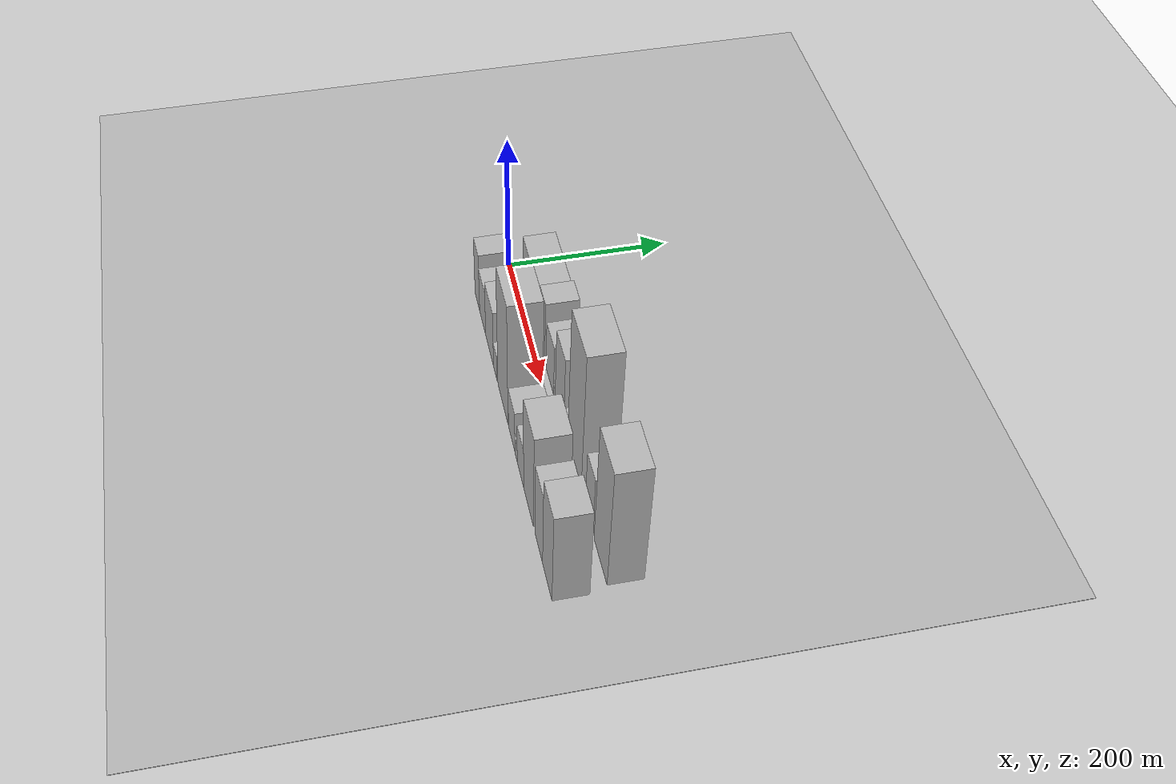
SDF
<?xml version="1.0" encoding="utf-8"?>

<sdf version="1.6">

   <world name="default">

      <gui fullscreen="0">

         <camera name="user_camera">

            <pose>-15 0 4.57585 0 0 0</pose>

            <view_controller>orbit</view_controller>

         </camera>

      </gui>

      <scene>

         <sky>

           <clouds>

             <speed>12</speed>

           </clouds>

         </sky>

         <ambient>0.4 0.4 0.4 1</ambient>

         <background>0.7 0.7 0.7 1</background>

         <shadows>1</shadows>

      </scene>

      <gravity>0 0 -9.8066</gravity>

      <magnetic_field>6e-06 2.3e-05 -4.2e-05</magnetic_field>

      <physics default="0" name="default_physics" type="ode">

         <ode>

            <solver>

               <type>quick</type>

               <iters>10</iters>

               <sor>1.0</sor>

               <use_dynamic_moi_rescaling>0</use_dynamic_moi_rescaling>

            </solver>

            <constraints>

               <cfm>0</cfm>

               <erp>0.2</erp>

               <contact_max_correcting_vel>100</contact_max_correcting_vel>

               <contact_surface_layer>0.001</contact_surface_layer>

            </constraints>

         </ode>

         <max_step_size>0.004</max_step_size>

         <real_time_factor>1</real_time_factor>

         <real_time_update_rate>250</real_time_update_rate>

      </physics>

      <light name="sun" type="directional">

         <cast_shadows>1</cast_shadows>

         <pose>0 0 10 0 0 0</pose>

         <diffuse>0.8 0.8 0.8 1</diffuse>

         <specular>0.2 0.2 0.2 1</specular>

         <attenuation>

            <range>1000</range>

            <constant>0.9</constant>

            <linear>0.01</linear>

            <quadratic>0.001</quadratic>

         </attenuation>

         <direction>-0.5 0.1 -0.9</direction>

      </light>

      <include>

         <name>ground_plane_1</name>

         <uri>model://HANNAS_ground_plane</uri>

         <pose>0 0 0  0 0 0</pose>

      </include>

      <include>

         <name>ground_plane_2</name>

         <uri>model://HANNAS_ground_plane</uri>

         <pose>100 0 0  0 0 0</pose>

      </include>

      <model name="building_1">

         <static>1</static>

         <pose frame="">64.8346 30.0000 0 0.000000 0.000000 1.570796</pose>

         <link name="link">

            <pose frame="">0 0 42.00 0 0 0</pose>

            <collision name="collision">

               <geometry>

                  <box>

                     <size>40.0000 49.6691 84.0000</size>

                  </box>

               </geometry>

               <max_contacts>10</max_contacts>

               <surface>

                  <contact>

                     <ode/>

                  </contact>

                  <bounce/>

                  <friction>

                     <torsional>

                        <ode/>

                     </torsional>

                     <ode/>

                  </friction>

               </surface>

            </collision>

            <visual name="visual">

               <cast_shadows>0</cast_shadows>

               <geometry>

                  <box>

                     <size>40.0000 49.6691 84.0000</size>

                  </box>

               </geometry>

               <material>

                  <script>

                     <uri>model://HANNAS_wall/materials/scripts</uri>

                     <uri>model://HANNAS_wall/materials/textures</uri>

                     <name>vrc/HANNAS_wall</name>

                  </script>

               </material>

            </visual>

            <self_collide>0</self_collide>

            <enable_wind>0</enable_wind>

            <kinematic>0</kinematic>

         </link>

      </model>

      <model name="building_2">

         <static>1</static>

         <pose frame="">112.4177 30.0000 0 0.000000 0.000000 1.570796</pose>

         <link name="link">

            <pose frame="">0 0 42.00 0 0 0</pose>

            <collision name="collision">

               <geometry>

                  <box>

                     <size>40.0000 45.4972 84.0000</size>

                  </box>

               </geometry>

               <max_contacts>10</max_contacts>

               <surface>

                  <contact>

                     <ode/>

                  </contact>

                  <bounce/>

                  <friction>

                     <torsional>

                        <ode/>

                     </torsional>

                     <ode/>

                  </friction>

               </surface>

            </collision>

            <visual name="visual">

               <cast_shadows>0</cast_shadows>

               <geometry>

                  <box>

                     <size>40.0000 45.4972 84.0000</size>

                  </box>

               </geometry>

               <material>

                  <script>

                     <uri>model://HANNAS_wall/materials/scripts</uri>

                     <uri>model://HANNAS_wall/materials/textures</uri>

                     <name>vrc/HANNAS_wall</name>

                  </script>

               </material>

            </visual>

            <self_collide>0</self_collide>

            <enable_wind>0</enable_wind>

            <kinematic>0</kinematic>

         </link>

      </model>

      <model name="building_3">

         <static>1</static>

         <pose frame="">155.1606 30.0000 0 0.000000 0.000000 1.570796</pose>

         <link name="link">

            <pose frame="">0 0 49.50 0 0 0</pose>

            <collision name="collision">

               <geometry>

                  <box>

                     <size>40.0000 31.9887 99.0000</size>

                  </box>

               </geometry>

               <max_contacts>10</max_contacts>

               <surface>

                  <contact>

                     <ode/>

                  </contact>

                  <bounce/>

                  <friction>

                     <torsional>

                        <ode/>

                     </torsional>

                     <ode/>

                  </friction>

               </surface>

            </collision>

            <visual name="visual">

               <cast_shadows>0</cast_shadows>

               <geometry>

                  <box>

                     <size>40.0000 31.9887 99.0000</size>

                  </box>

               </geometry>

               <material>

                  <script>

                     <uri>model://HANNAS_wall/materials/scripts</uri>

                     <uri>model://HANNAS_wall/materials/textures</uri>

                     <name>vrc/HANNAS_wall</name>

                  </script>

               </material>

            </visual>

            <self_collide>0</self_collide>

            <enable_wind>0</enable_wind>

            <kinematic>0</kinematic>

         </link>

      </model>

      <model name="building_4">

         <static>1</static>

         <pose frame="">199.7662 30.0000 0 0.000000 0.000000 1.570796</pose>

         <link name="link">

            <pose frame="">0 0 39.00 0 0 0</pose>

            <collision name="collision">

               <geometry>

                  <box>

                     <size>40.0000 41.2224 78.0000</size>

                  </box>

               </geometry>

               <max_contacts>10</max_contacts>

               <surface>

                  <contact>

                     <ode/>

                  </contact>

                  <bounce/>

                  <friction>

                     <torsional>

                        <ode/>

                     </torsional>

                     <ode/>

                  </friction>

               </surface>

            </collision>

            <visual name="visual">

               <cast_shadows>0</cast_shadows>

               <geometry>

                  <box>

                     <size>40.0000 41.2224 78.0000</size>

                  </box>

               </geometry>

               <material>

                  <script>

                     <uri>model://HANNAS_wall/materials/scripts</uri>

                     <uri>model://HANNAS_wall/materials/textures</uri>

                     <name>vrc/HANNAS_wall</name>

                  </script>

               </material>

            </visual>

            <self_collide>0</self_collide>

            <enable_wind>0</enable_wind>

            <kinematic>0</kinematic>

         </link>

      </model>

      <model name="building_5">

         <static>1</static>

         <pose frame="">224.8412 30.0000 0 0.000000 0.000000 1.570796</pose>

         <link name="link">

            <pose frame="">0 0 9.00 0 0 0</pose>

            <collision name="collision">

               <geometry>

                  <box>

                     <size>40.0000 8.9275 18.0000</size>

                  </box>

               </geometry>

               <max_contacts>10</max_contacts>

               <surface>

                  <contact>

                     <ode/>

                  </contact>

                  <bounce/>

                  <friction>

                     <torsional>

                        <ode/>

                     </torsional>

                     <ode/>

                  </friction>

               </surface>

            </collision>

            <visual name="visual">

               <cast_shadows>0</cast_shadows>

               <geometry>

                  <box>

                     <size>40.0000 8.9275 18.0000</size>

                  </box>

               </geometry>

               <material>

                  <script>

                     <uri>model://HANNAS_wall/materials/scripts</uri>

                     <uri>model://HANNAS_wall/materials/textures</uri>

                     <name>vrc/HANNAS_wall</name>

                  </script>

               </material>

            </visual>

            <self_collide>0</self_collide>

            <enable_wind>0</enable_wind>

            <kinematic>0</kinematic>

         </link>

      </model>

      <model name="building_6">

         <static>1</static>

         <pose frame="">252.0580 30.0000 0 0.000000 0.000000 1.570796</pose>

         <link name="link">

            <pose frame="">0 0 58.50 0 0 0</pose>

            <collision name="collision">

               <geometry>

                  <box>

                     <size>40.0000 45.5061 117.0000</size>

                  </box>

               </geometry>

               <max_contacts>10</max_contacts>

               <surface>

                  <contact>

                     <ode/>

                  </contact>

                  <bounce/>

                  <friction>

                     <torsional>

                        <ode/>

                     </torsional>

                     <ode/>

                  </friction>

               </surface>

            </collision>

            <visual name="visual">

               <cast_shadows>0</cast_shadows>

               <geometry>

                  <box>

                     <size>40.0000 45.5061 117.0000</size>

                  </box>

               </geometry>

               <material>

                  <script>

                     <uri>model://HANNAS_wall/materials/scripts</uri>

                     <uri>model://HANNAS_wall/materials/textures</uri>

                     <name>vrc/HANNAS_wall</name>

                  </script>

               </material>

            </visual>

            <self_collide>0</self_collide>

            <enable_wind>0</enable_wind>

            <kinematic>0</kinematic>

         </link>

      </model>

      <model name="building_7">

         <static>1</static>

         <pose frame="">285.4624 30.0000 0 0.000000 0.000000 1.570796</pose>

         <link name="link">

            <pose frame="">0 0 19.50 0 0 0</pose>

            <collision name="collision">

               <geometry>

                  <box>

                     <size>40.0000 21.3026 39.0000</size>

                  </box>

               </geometry>

               <max_contacts>10</max_contacts>

               <surface>

                  <contact>

                     <ode/>

                  </contact>

                  <bounce/>

                  <friction>

                     <torsional>

                        <ode/>

                     </torsional>

                     <ode/>

                  </friction>

               </surface>

            </collision>

            <visual name="visual">

               <cast_shadows>0</cast_shadows>

               <geometry>

                  <box>

                     <size>40.0000 21.3026 39.0000</size>

                  </box>

               </geometry>

               <material>

                  <script>

                     <uri>model://HANNAS_wall/materials/scripts</uri>

                     <uri>model://HANNAS_wall/materials/textures</uri>

                     <name>vrc/HANNAS_wall</name>

                  </script>

               </material>

            </visual>

            <self_collide>0</self_collide>

            <enable_wind>0</enable_wind>

            <kinematic>0</kinematic>

         </link>

      </model>

      <model name="building_8">

         <static>1</static>

         <pose frame="">330.2180 30.0000 0 0.000000 0.000000 1.570796</pose>

         <link name="link">

            <pose frame="">0 0 109.50 0 0 0</pose>

            <collision name="collision">

               <geometry>

                  <box>

                     <size>40.0000 68.2086 219.0000</size>

                  </box>

               </geometry>

               <max_contacts>10</max_contacts>

               <surface>

                  <contact>

                     <ode/>

                  </contact>

                  <bounce/>

                  <friction>

                     <torsional>

                        <ode/>

                     </torsional>

                     <ode/>

                  </friction>

               </surface>

            </collision>

            <visual name="visual">

               <cast_shadows>0</cast_shadows>

               <geometry>

                  <box>

                     <size>40.0000 68.2086 219.0000</size>

                  </box>

               </geometry>

               <material>

                  <script>

                     <uri>model://HANNAS_wall/materials/scripts</uri>

                     <uri>model://HANNAS_wall/materials/textures</uri>

                     <name>vrc/HANNAS_wall</name>

                  </script>

               </material>

            </visual>

            <self_collide>0</self_collide>

            <enable_wind>0</enable_wind>

            <kinematic>0</kinematic>

         </link>

      </model>

      <model name="building_9">

         <static>1</static>

         <pose frame="">377.6654 30.0000 0 0.000000 0.000000 1.570796</pose>

         <link name="link">

            <pose frame="">0 0 13.50 0 0 0</pose>

            <collision name="collision">

               <geometry>

                  <box>

                     <size>40.0000 12.6862 27.0000</size>

                  </box>

               </geometry>

               <max_contacts>10</max_contacts>

               <surface>

                  <contact>

                     <ode/>

                  </contact>

                  <bounce/>

                  <friction>

                     <torsional>

                        <ode/>

                     </torsional>

                     <ode/>

                  </friction>

               </surface>

            </collision>

            <visual name="visual">

               <cast_shadows>0</cast_shadows>

               <geometry>

                  <box>

                     <size>40.0000 12.6862 27.0000</size>

                  </box>

               </geometry>

               <material>

                  <script>

                     <uri>model://HANNAS_wall/materials/scripts</uri>

                     <uri>model://HANNAS_wall/materials/textures</uri>

                     <name>vrc/HANNAS_wall</name>

                  </script>

               </material>

            </visual>

            <self_collide>0</self_collide>

            <enable_wind>0</enable_wind>

            <kinematic>0</kinematic>

         </link>

      </model>

      <model name="building_10">

         <static>1</static>

         <pose frame="">402.2685 30.0000 0 0.000000 0.000000 1.570796</pose>

         <link name="link">

            <pose frame="">0 0 46.50 0 0 0</pose>

            <collision name="collision">

               <geometry>

                  <box>

                     <size>40.0000 36.5198 93.0000</size>

                  </box>

               </geometry>

               <max_contacts>10</max_contacts>

               <surface>

                  <contact>

                     <ode/>

                  </contact>

                  <bounce/>

                  <friction>

                     <torsional>

                        <ode/>

                     </torsional>

                     <ode/>

                  </friction>

               </surface>

            </collision>

            <visual name="visual">

               <cast_shadows>0</cast_shadows>

               <geometry>

                  <box>

                     <size>40.0000 36.5198 93.0000</size>

                  </box>

               </geometry>

               <material>

                  <script>

                     <uri>model://HANNAS_wall/materials/scripts</uri>

                     <uri>model://HANNAS_wall/materials/textures</uri>

                     <name>vrc/HANNAS_wall</name>

                  </script>

               </material>

            </visual>

            <self_collide>0</self_collide>

            <enable_wind>0</enable_wind>

            <kinematic>0</kinematic>

         </link>

      </model>

      <model name="building_11">

         <static>1</static>

         <pose frame="">456.3955 30.0000 0 0.000000 0.000000 1.570796</pose>

         <link name="link">

            <pose frame="">0 0 93.00 0 0 0</pose>

            <collision name="collision">

               <geometry>

                  <box>

                     <size>40.0000 59.7343 186.0000</size>

                  </box>

               </geometry>

               <max_contacts>10</max_contacts>

               <surface>

                  <contact>

                     <ode/>

                  </contact>

                  <bounce/>

                  <friction>

                     <torsional>

                        <ode/>

                     </torsional>

                     <ode/>

                  </friction>

               </surface>

            </collision>

            <visual name="visual">

               <cast_shadows>0</cast_shadows>

               <geometry>

                  <box>

                     <size>40.0000 59.7343 186.0000</size>

                  </box>

               </geometry>

               <material>

                  <script>

                     <uri>model://HANNAS_wall/materials/scripts</uri>

                     <uri>model://HANNAS_wall/materials/textures</uri>

                     <name>vrc/HANNAS_wall</name>

                  </script>

               </material>

            </visual>

            <self_collide>0</self_collide>

            <enable_wind>0</enable_wind>

            <kinematic>0</kinematic>

         </link>

      </model>

      <model name="building_12">

         <static>1</static>

         <pose frame="">55.9787 -30.0000 0 0.000000 0.000000 1.570796</pose>

         <link name="link">

            <pose frame="">0 0 46.50 0 0 0</pose>

            <collision name="collision">

               <geometry>

                  <box>

                     <size>40.0000 31.9575 93.0000</size>

                  </box>

               </geometry>

               <max_contacts>10</max_contacts>

               <surface>

                  <contact>

                     <ode/>

                  </contact>

                  <bounce/>

                  <friction>

                     <torsional>

                        <ode/>

                     </torsional>

                     <ode/>

                  </friction>

               </surface>

            </collision>

            <visual name="visual">

               <cast_shadows>0</cast_shadows>

               <geometry>

                  <box>

                     <size>40.0000 31.9575 93.0000</size>

                  </box>

               </geometry>

               <material>

                  <script>

                     <uri>model://HANNAS_wall/materials/scripts</uri>

                     <uri>model://HANNAS_wall/materials/textures</uri>

                     <name>vrc/HANNAS_wall</name>

                  </script>

               </material>

            </visual>

            <self_collide>0</self_collide>

            <enable_wind>0</enable_wind>

            <kinematic>0</kinematic>

         </link>

      </model>

      <model name="building_13">

         <static>1</static>

         <pose frame="">92.5527 -30.0000 0 0.000000 0.000000 1.570796</pose>

         <link name="link">

            <pose frame="">0 0 36.00 0 0 0</pose>

            <collision name="collision">

               <geometry>

                  <box>

                     <size>40.0000 41.1905 72.0000</size>

                  </box>

               </geometry>

               <max_contacts>10</max_contacts>

               <surface>

                  <contact>

                     <ode/>

                  </contact>

                  <bounce/>

                  <friction>

                     <torsional>

                        <ode/>

                     </torsional>

                     <ode/>

                  </friction>

               </surface>

            </collision>

            <visual name="visual">

               <cast_shadows>0</cast_shadows>

               <geometry>

                  <box>

                     <size>40.0000 41.1905 72.0000</size>

                  </box>

               </geometry>

               <material>

                  <script>

                     <uri>model://HANNAS_wall/materials/scripts</uri>

                     <uri>model://HANNAS_wall/materials/textures</uri>

                     <name>vrc/HANNAS_wall</name>

                  </script>

               </material>

            </visual>

            <self_collide>0</self_collide>

            <enable_wind>0</enable_wind>

            <kinematic>0</kinematic>

         </link>

      </model>

      <model name="building_14">

         <static>1</static>

         <pose frame="">138.7073 -30.0000 0 0.000000 0.000000 1.570796</pose>

         <link name="link">

            <pose frame="">0 0 45.00 0 0 0</pose>

            <collision name="collision">

               <geometry>

                  <box>

                     <size>40.0000 51.1188 90.0000</size>

                  </box>

               </geometry>

               <max_contacts>10</max_contacts>

               <surface>

                  <contact>

                     <ode/>

                  </contact>

                  <bounce/>

                  <friction>

                     <torsional>

                        <ode/>

                     </torsional>

                     <ode/>

                  </friction>

               </surface>

            </collision>

            <visual name="visual">

               <cast_shadows>0</cast_shadows>

               <geometry>

                  <box>

                     <size>40.0000 51.1188 90.0000</size>

                  </box>

               </geometry>

               <material>

                  <script>

                     <uri>model://HANNAS_wall/materials/scripts</uri>

                     <uri>model://HANNAS_wall/materials/textures</uri>

                     <name>vrc/HANNAS_wall</name>

                  </script>

               </material>

            </visual>

            <self_collide>0</self_collide>

            <enable_wind>0</enable_wind>

            <kinematic>0</kinematic>

         </link>

      </model>

      <model name="building_15">

         <static>1</static>

         <pose frame="">175.8539 -30.0000 0 0.000000 0.000000 1.570796</pose>

         <link name="link">

            <pose frame="">0 0 21.00 0 0 0</pose>

            <collision name="collision">

               <geometry>

                  <box>

                     <size>40.0000 23.1744 42.0000</size>

                  </box>

               </geometry>

               <max_contacts>10</max_contacts>

               <surface>

                  <contact>

                     <ode/>

                  </contact>

                  <bounce/>

                  <friction>

                     <torsional>

                        <ode/>

                     </torsional>

                     <ode/>

                  </friction>

               </surface>

            </collision>

            <visual name="visual">

               <cast_shadows>0</cast_shadows>

               <geometry>

                  <box>

                     <size>40.0000 23.1744 42.0000</size>

                  </box>

               </geometry>

               <material>

                  <script>

                     <uri>model://HANNAS_wall/materials/scripts</uri>

                     <uri>model://HANNAS_wall/materials/textures</uri>

                     <name>vrc/HANNAS_wall</name>

                  </script>

               </material>

            </visual>

            <self_collide>0</self_collide>

            <enable_wind>0</enable_wind>

            <kinematic>0</kinematic>

         </link>

      </model>

      <model name="building_16">

         <static>1</static>

         <pose frame="">223.3437 -30.0000 0 0.000000 0.000000 1.570796</pose>

         <link name="link">

            <pose frame="">0 0 96.00 0 0 0</pose>

            <collision name="collision">

               <geometry>

                  <box>

                     <size>40.0000 61.8050 192.0000</size>

                  </box>

               </geometry>

               <max_contacts>10</max_contacts>

               <surface>

                  <contact>

                     <ode/>

                  </contact>

                  <bounce/>

                  <friction>

                     <torsional>

                        <ode/>

                     </torsional>

                     <ode/>

                  </friction>

               </surface>

            </collision>

            <visual name="visual">

               <cast_shadows>0</cast_shadows>

               <geometry>

                  <box>

                     <size>40.0000 61.8050 192.0000</size>

                  </box>

               </geometry>

               <material>

                  <script>

                     <uri>model://HANNAS_wall/materials/scripts</uri>

                     <uri>model://HANNAS_wall/materials/textures</uri>

                     <name>vrc/HANNAS_wall</name>

                  </script>

               </material>

            </visual>

            <self_collide>0</self_collide>

            <enable_wind>0</enable_wind>

            <kinematic>0</kinematic>

         </link>

      </model>

      <model name="building_17">

         <static>1</static>

         <pose frame="">276.1287 -30.0000 0 0.000000 0.000000 1.570796</pose>

         <link name="link">

            <pose frame="">0 0 33.00 0 0 0</pose>

            <collision name="collision">

               <geometry>

                  <box>

                     <size>40.0000 37.7650 66.0000</size>

                  </box>

               </geometry>

               <max_contacts>10</max_contacts>

               <surface>

                  <contact>

                     <ode/>

                  </contact>

                  <bounce/>

                  <friction>

                     <torsional>

                        <ode/>

                     </torsional>

                     <ode/>

                  </friction>

               </surface>

            </collision>

            <visual name="visual">

               <cast_shadows>0</cast_shadows>

               <geometry>

                  <box>

                     <size>40.0000 37.7650 66.0000</size>

                  </box>

               </geometry>

               <material>

                  <script>

                     <uri>model://HANNAS_wall/materials/scripts</uri>

                     <uri>model://HANNAS_wall/materials/textures</uri>

                     <name>vrc/HANNAS_wall</name>

                  </script>

               </material>

            </visual>

            <self_collide>0</self_collide>

            <enable_wind>0</enable_wind>

            <kinematic>0</kinematic>

         </link>

      </model>

      <model name="building_18">

         <static>1</static>

         <pose frame="">301.7533 -30.0000 0 0.000000 0.000000 1.570796</pose>

         <link name="link">

            <pose frame="">0 0 13.50 0 0 0</pose>

            <collision name="collision">

               <geometry>

                  <box>

                     <size>40.0000 13.4843 27.0000</size>

                  </box>

               </geometry>

               <max_contacts>10</max_contacts>

               <surface>

                  <contact>

                     <ode/>

                  </contact>

                  <bounce/>

                  <friction>

                     <torsional>

                        <ode/>

                     </torsional>

                     <ode/>

                  </friction>

               </surface>

            </collision>

            <visual name="visual">

               <cast_shadows>0</cast_shadows>

               <geometry>

                  <box>

                     <size>40.0000 13.4843 27.0000</size>

                  </box>

               </geometry>

               <material>

                  <script>

                     <uri>model://HANNAS_wall/materials/scripts</uri>

                     <uri>model://HANNAS_wall/materials/textures</uri>

                     <name>vrc/HANNAS_wall</name>

                  </script>

               </material>

            </visual>

            <self_collide>0</self_collide>

            <enable_wind>0</enable_wind>

            <kinematic>0</kinematic>

         </link>

      </model>

      <model name="building_19">

         <static>1</static>

         <pose frame="">326.5711 -30.0000 0 0.000000 0.000000 1.570796</pose>

         <link name="link">

            <pose frame="">0 0 31.50 0 0 0</pose>

            <collision name="collision">

               <geometry>

                  <box>

                     <size>40.0000 36.1513 63.0000</size>

                  </box>

               </geometry>

               <max_contacts>10</max_contacts>

               <surface>

                  <contact>

                     <ode/>

                  </contact>

                  <bounce/>

                  <friction>

                     <torsional>

                        <ode/>

                     </torsional>

                     <ode/>

                  </friction>

               </surface>

            </collision>

            <visual name="visual">

               <cast_shadows>0</cast_shadows>

               <geometry>

                  <box>

                     <size>40.0000 36.1513 63.0000</size>

                  </box>

               </geometry>

               <material>

                  <script>

                     <uri>model://HANNAS_wall/materials/scripts</uri>

                     <uri>model://HANNAS_wall/materials/textures</uri>

                     <name>vrc/HANNAS_wall</name>

                  </script>

               </material>

            </visual>

            <self_collide>0</self_collide>

            <enable_wind>0</enable_wind>

            <kinematic>0</kinematic>

         </link>

      </model>

      <model name="building_20">

         <static>1</static>

         <pose frame="">371.8118 -30.0000 0 0.000000 0.000000 1.570796</pose>

         <link name="link">

            <pose frame="">0 0 73.50 0 0 0</pose>

            <collision name="collision">

               <geometry>

                  <box>

                     <size>40.0000 54.3301 147.0000</size>

                  </box>

               </geometry>

               <max_contacts>10</max_contacts>

               <surface>

                  <contact>

                     <ode/>

                  </contact>

                  <bounce/>

                  <friction>

                     <torsional>

                        <ode/>

                     </torsional>

                     <ode/>

                  </friction>

               </surface>

            </collision>

            <visual name="visual">

               <cast_shadows>0</cast_shadows>

               <geometry>

                  <box>

                     <size>40.0000 54.3301 147.0000</size>

                  </box>

               </geometry>

               <material>

                  <script>

                     <uri>model://HANNAS_wall/materials/scripts</uri>

                     <uri>model://HANNAS_wall/materials/textures</uri>

                     <name>vrc/HANNAS_wall</name>

                  </script>

               </material>

            </visual>

            <self_collide>0</self_collide>

            <enable_wind>0</enable_wind>

            <kinematic>0</kinematic>

         </link>

      </model>

      <model name="building_21">

         <static>1</static>

         <pose frame="">426.3185 -30.0000 0 0.000000 0.000000 1.570796</pose>

         <link name="link">

            <pose frame="">0 0 57.00 0 0 0</pose>

            <collision name="collision">

               <geometry>

                  <box>

                     <size>40.0000 40.6833 114.0000</size>

                  </box>

               </geometry>

               <max_contacts>10</max_contacts>

               <surface>

                  <contact>

                     <ode/>

                  </contact>

                  <bounce/>

                  <friction>

                     <torsional>

                        <ode/>

                     </torsional>

                     <ode/>

                  </friction>

               </surface>

            </collision>

            <visual name="visual">

               <cast_shadows>0</cast_shadows>

               <geometry>

                  <box>

                     <size>40.0000 40.6833 114.0000</size>

                  </box>

               </geometry>

               <material>

                  <script>

                     <uri>model://HANNAS_wall/materials/scripts</uri>

                     <uri>model://HANNAS_wall/materials/textures</uri>

                     <name>vrc/HANNAS_wall</name>

                  </script>

               </material>

            </visual>

            <self_collide>0</self_collide>

            <enable_wind>0</enable_wind>

            <kinematic>0</kinematic>

         </link>

      </model>

      <model name="building_22">

         <static>1</static>

         <pose frame="">470.2446 -30.0000 0 0.000000 0.000000 1.570796</pose>

         <link name="link">

            <pose frame="">0 0 70.50 0 0 0</pose>

            <collision name="collision">

               <geometry>

                  <box>

                     <size>40.0000 47.1689 141.0000</size>

                  </box>

               </geometry>

               <max_contacts>10</max_contacts>

               <surface>

                  <contact>

                     <ode/>

                  </contact>

                  <bounce/>

                  <friction>

                     <torsional>

                        <ode/>

                     </torsional>

                     <ode/>

                  </friction>

               </surface>

            </collision>

            <visual name="visual">

               <cast_shadows>0</cast_shadows>

               <geometry>

                  <box>

                     <size>40.0000 47.1689 141.0000</size>

                  </box>

               </geometry>

               <material>

                  <script>

                     <uri>model://HANNAS_wall/materials/scripts</uri>

                     <uri>model://HANNAS_wall/materials/textures</uri>

                     <name>vrc/HANNAS_wall</name>

                  </script>

               </material>

            </visual>

            <self_collide>0</self_collide>

            <enable_wind>0</enable_wind>

            <kinematic>0</kinematic>

         </link>

      </model>

   </world>

</sdf>

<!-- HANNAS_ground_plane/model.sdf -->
<sdf version="1.4">
<model name="HANNAS_ground_plane">
  <static>true</static>
    <link name="link">
      <collision name="collision">
        <geometry>
          <plane>
            <normal>0 0 1</normal>
            <size>1000 1000</size>
          </plane>
        </geometry>
        <surface>
          <friction>
            <ode>
              <mu>100</mu>
              <mu2>50</mu2>
            </ode>
          </friction>
        </surface>
      </collision>
      <visual name="visual">
        <cast_shadows>false</cast_shadows>
        <geometry>
          <plane>
            <normal>0 0 1</normal>
            <size>1000 1000</size>
          </plane>
        </geometry>
        <material>
          <script>
            <uri>model://HANNAS_ground_plane/materials/scripts/HANNAS_ground_plane.material</uri>
	    <uri>model://HANNAS_ground_plane/materials/textures</uri>
            <name>HANNASGroundPlane/Image</name>
          </script>
        </material>
      </visual>
    </link>
  </model>
</sdf>
